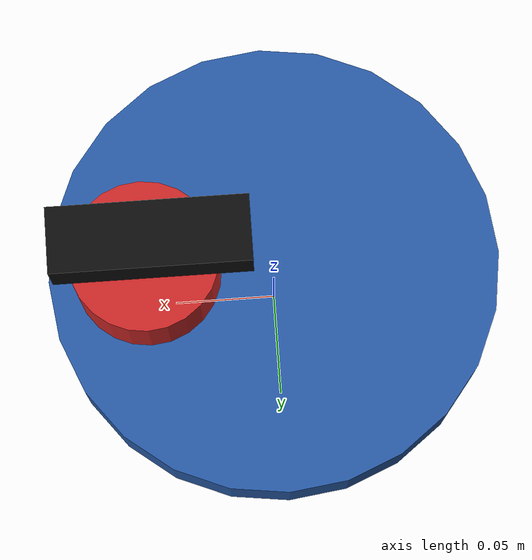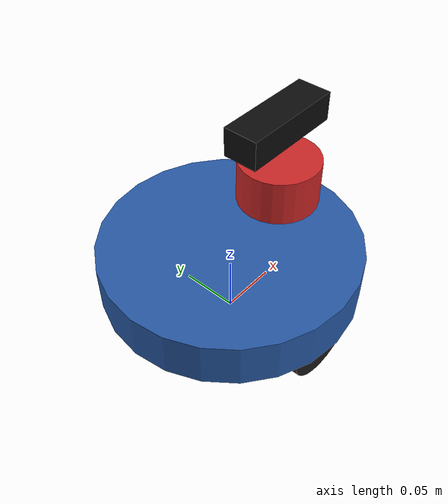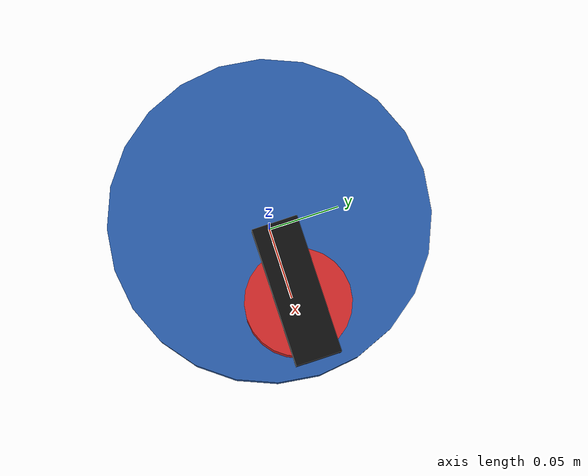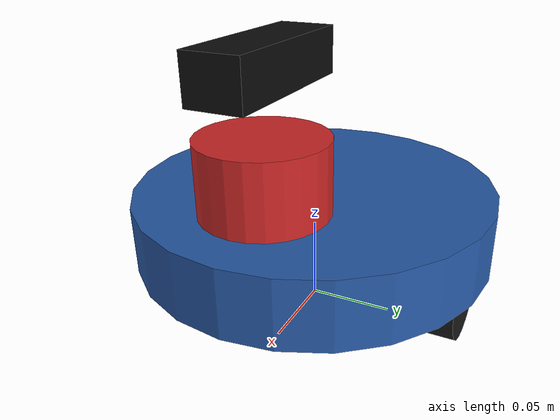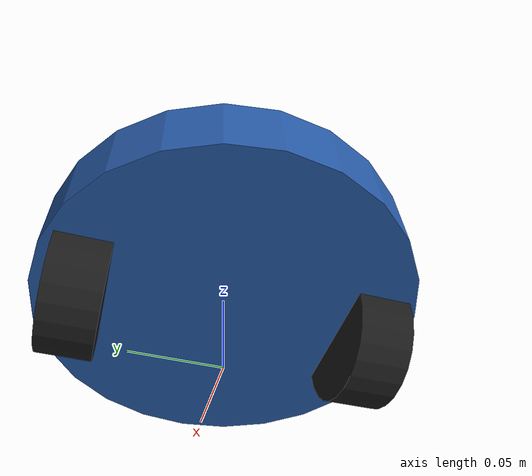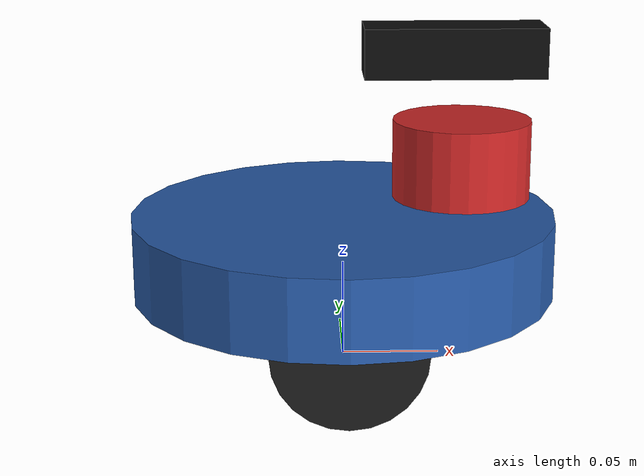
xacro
<?xml version="1.0"?>
<robot name="flyingshark_r10" xmlns:xacro="http://www.ros.org/wiki/xacro">
  <xacro:arg name="chassis_radius" default="0.108"/>
  <xacro:arg name="wheel_radius" default="0.037"/>
  <xacro:arg name="wheel_separation" default="0.164"/>
  <xacro:arg name="lidar_x" default="0.06"/>
  <xacro:arg name="lidar_y" default="0.0"/>
  <xacro:arg name="lidar_z" default="0.105"/>
  <xacro:arg name="lidar_yaw" default="0.0"/>
  <xacro:arg name="camera_x" default="0.055"/>
  <xacro:arg name="camera_y" default="0.0"/>
  <xacro:arg name="camera_z" default="0.160"/>
  <xacro:arg name="camera_yaw" default="0.0"/>
  <xacro:arg name="camera_pitch" default="0.0"/>

  <xacro:property name="chassis_radius" value="$(arg chassis_radius)"/>
  <xacro:property name="wheel_radius" value="$(arg wheel_radius)"/>
  <xacro:property name="wheel_separation" value="$(arg wheel_separation)"/>
  <xacro:property name="lidar_x" value="$(arg lidar_x)"/>
  <xacro:property name="lidar_y" value="$(arg lidar_y)"/>
  <xacro:property name="lidar_z" value="$(arg lidar_z)"/>
  <xacro:property name="lidar_yaw" value="$(arg lidar_yaw)"/>
  <xacro:property name="camera_x" value="$(arg camera_x)"/>
  <xacro:property name="camera_y" value="$(arg camera_y)"/>
  <xacro:property name="camera_z" value="$(arg camera_z)"/>
  <xacro:property name="camera_yaw" value="$(arg camera_yaw)"/>
  <xacro:property name="camera_pitch" value="$(arg camera_pitch)"/>

  <link name="base_footprint"/>

  <joint name="base_link_joint" type="fixed">
    <parent link="base_footprint"/>
    <child link="base_link"/>
    <origin xyz="0 0 ${wheel_radius}" rpy="0 0 0"/>
  </joint>
  <link name="base_link">
    <visual>
      <origin xyz="0 0 0.02" rpy="0 0 0"/>
      <geometry>
        <cylinder radius="${chassis_radius}" length="0.04"/>
      </geometry>
      <material name="chassis_blue">
        <color rgba="0.15 0.35 0.65 1"/>
      </material>
    </visual>
  </link>

  <joint name="left_wheel_joint" type="fixed">
    <parent link="base_link"/>
    <child link="left_wheel"/>
    <origin xyz="0 ${wheel_separation/2} 0" rpy="1.5708 0 0"/>
  </joint>
  <link name="left_wheel">
    <visual>
      <geometry><cylinder radius="${wheel_radius}" length="0.03"/></geometry>
      <material name="wheel_black"><color rgba="0.1 0.1 0.1 1"/></material>
    </visual>
  </link>

  <joint name="right_wheel_joint" type="fixed">
    <parent link="base_link"/>
    <child link="right_wheel"/>
    <origin xyz="0 ${-wheel_separation/2} 0" rpy="1.5708 0 0"/>
  </joint>
  <link name="right_wheel">
    <visual>
      <geometry><cylinder radius="${wheel_radius}" length="0.03"/></geometry>
      <material name="wheel_black"/>
    </visual>
  </link>

  <joint name="imu_joint" type="fixed">
    <parent link="base_link"/>
    <child link="base_imu_link"/>
    <origin xyz="0 0 0.02" rpy="0 0 0"/>
  </joint>
  <link name="base_imu_link"/>

  <joint name="laser_joint" type="fixed">
    <parent link="base_footprint"/>
    <child link="laser"/>
    <origin xyz="${lidar_x} ${lidar_y} ${lidar_z}" rpy="0 0 ${lidar_yaw}"/>
  </joint>
  <link name="laser">
    <visual>
      <geometry><cylinder radius="0.035" length="0.04"/></geometry>
      <material name="lidar_red"><color rgba="0.8 0.15 0.15 1"/></material>
    </visual>
  </link>

  <joint name="camera_joint" type="fixed">
    <parent link="base_footprint"/>
    <child link="camera_link"/>
    <origin xyz="${camera_x} ${camera_y} ${camera_z}" rpy="0 ${camera_pitch} ${camera_yaw}"/>
  </joint>
  <link name="camera_link">
    <visual>
      <origin xyz="0 0 0" rpy="0 0 0"/>
      <geometry><box size="0.09 0.03 0.025"/></geometry>
      <material name="camera_black"><color rgba="0.05 0.05 0.05 1"/></material>
    </visual>
  </link>
</robot>
